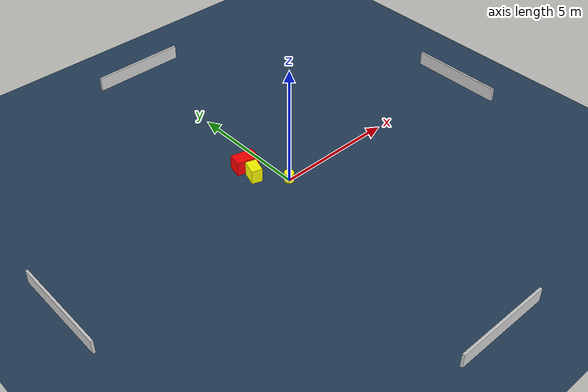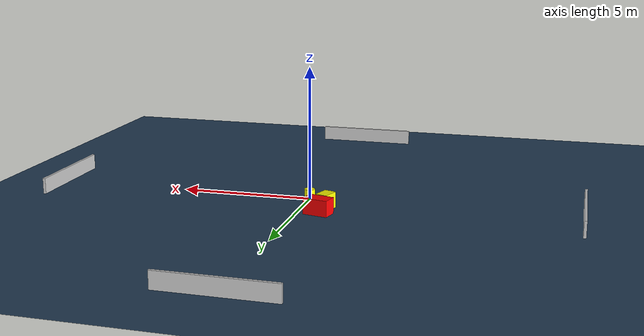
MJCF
<?xml version="1.0" ?>
<mujoco model="generated_environment">
  <option timestep="0.01" integrator="RK4" cone="elliptic"/>
  <default>
    <geom density="1"/>
  </default>
  <asset>
    <texture builtin="gradient" height="3072" name="skybox" rgb1="0.3 0.5 0.7" rgb2="0 0 0" type="skybox" width="512"/>
    <texture builtin="checker" height="300" name="groundplane" rgb1="0.2 0.3 0.4" rgb2="0.1 0.2 0.3" type="2d" width="300"/>
    <material name="groundplane" reflectance="0.2" texrepeat="5 5" texture="groundplane"/>
  </asset>
  <worldbody>
    <light dir="0 0 -1" directional="true" pos="0 0 1.5"/>
    <geom condim="3" friction="0.5 0.005 0.001" material="groundplane" name="floor" pos="0 0 0" size="0 0 0.05" type="plane"/>
    <body name="walls">
      <geom name="wall_1" condim="4" pos="-10.0 0.0 0.3" rgba="0.800000011920929 0.800000011920929 0.800000011920929 1.0" size="0.05 2.0 0.3" type="box"/>
      <geom name="wall_2" condim="4" pos="10.0 0.0 0.3" rgba="0.800000011920929 0.800000011920929 0.800000011920929 1.0" size="0.05 2.0 0.3" type="box"/>
      <geom name="wall_3" condim="4" pos="0.0 -10.0 0.3" rgba="0.800000011920929 0.800000011920929 0.800000011920929 1.0" size="2.0 0.05 0.3" type="box"/>
      <geom name="wall_4" condim="4" pos="0.0 10.0 0.3" rgba="0.800000011920929 0.800000011920929 0.800000011920929 1.0" size="2.0 0.05 0.3" type="box"/>
    </body>
    <body name="robot">
      <joint name="joint_x" type="slide" pos="0 0 0" axis="1 0 0"/>
      <joint name="joint_y" type="slide" pos="0 0 0" axis="0 1 0"/>
      <geom name="robot" type="cylinder" pos="0.0 0.0 0.2" size="0.2 0.2 0.0" mass="5.0" friction="1.0 0.005 0.0001" condim="4" rgba="1.0 1.0 0.0 1.0"/>
    </body>
    <body name="obstacle_1_movable">
      <geom name="obstacle_1_movable" condim="4" pos="-0.8873063536516625 1.027092753143157 0.3" euler="0 0 72.04273180577907" friction="0.0 0.005 0.001" rgba="1.0 1.0 0.0 1.0" size="0.3202334655925715 0.22552057263529052 0.3" type="box" mass="0.1"/>
      <joint type="free"/>
    </body>
    <body name="obstacle_2_static">
      <geom name="obstacle_2_static" condim="4" pos="-0.7766961545616389 1.6969614581852557 0.3" euler="0 0 347.5357831022104" friction="0.0 0.005 0.001" rgba="1.0 0.0 0.0 1.0" size="0.47092512157037075 0.28737419384322777 0.3" type="box"/>
    </body>
  </worldbody>
  <actuator>
    <motor name="actuator_x" joint="joint_x" gear="1" ctrlrange="-1 1"/>
    <motor name="actuator_y" joint="joint_y" gear="1" ctrlrange="-1 1"/>
  </actuator>
</mujoco>
